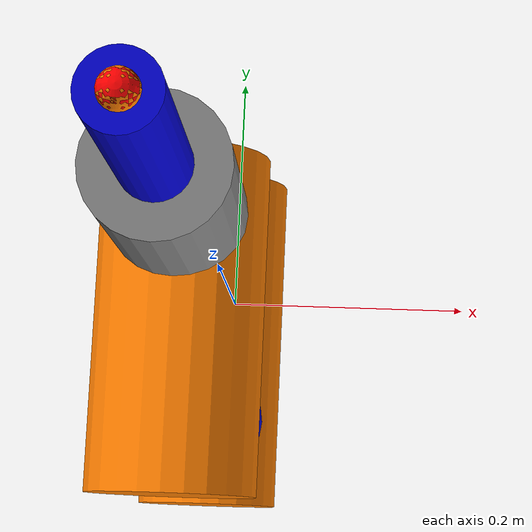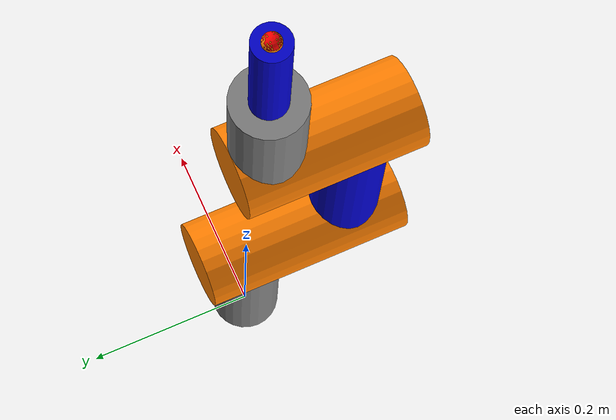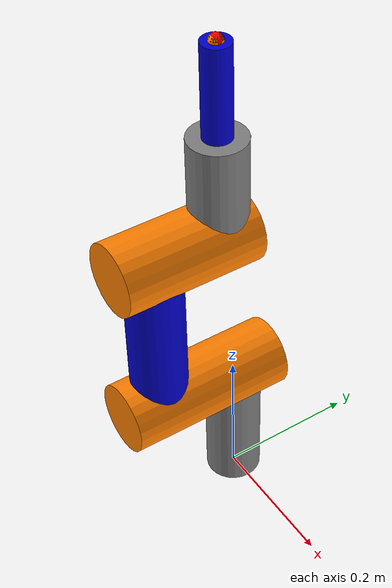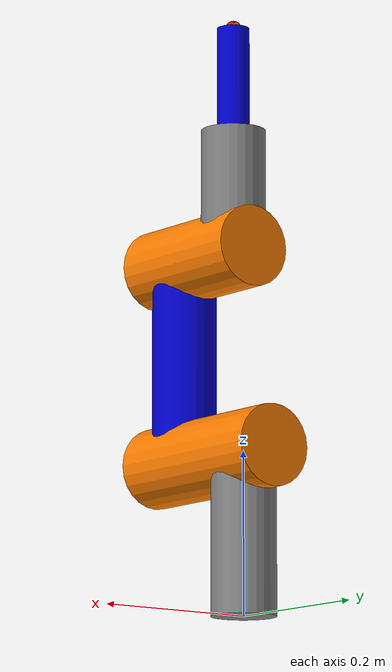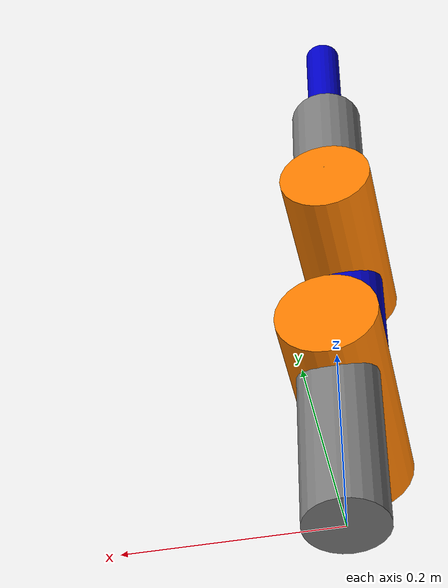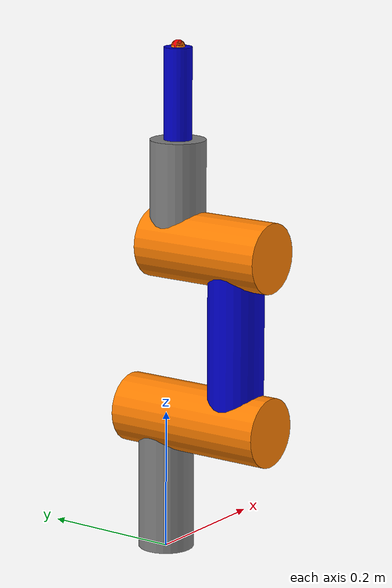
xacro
<?xml version="1.0"?>
<robot xmlns:xacro="http://www.ros.org/wiki/xacro" name="lab4_robot_final_perfect_axis">

  <xacro:property name="h_base"  value="0.20"/>
  <xacro:property name="h_link1" value="0.25"/>
  <xacro:property name="h_link2" value="0.15"/>
  <xacro:property name="h_tip"   value="0.13"/>

  <xacro:property name="j2_len" value="0.24"/>
  <xacro:property name="j3_len" value="0.20"/>

  <xacro:property name="radius_main" value="0.04"/>
  <xacro:property name="radius_joint" value="0.05"/>
  <xacro:property name="radius_tip" value="0.02"/>

  <material name="grey"> <color rgba="0.5 0.5 0.5 1"/> </material>
  <material name="orange"> <color rgba="1.0 0.5 0.0 1"/> </material>
  <material name="blue"> <color rgba="0.0 0.0 0.8 1"/> </material>

  <link name="world"/>

  <joint name="joint_1" type="revolute">
    <parent link="world"/>
    <child link="link_base"/>
    <origin xyz="0 0 0" rpy="0 0 0"/>
    <axis xyz="0 0 1"/>
    <limit lower="-3.14" upper="3.14" effort="100" velocity="1.0"/>
  </joint>

  <link name="link_base">
    <visual>
      <origin xyz="0 0 ${h_base/2}" rpy="0 0 0"/>
      <geometry>
        <cylinder length="${h_base}" radius="${radius_main}"/>
      </geometry>
      <material name="grey"/>
    </visual>

    <visual>
      <origin xyz="0 -0.06 ${h_base}" rpy="${pi/2} 0 0"/>
      <geometry>
        <cylinder length="${j2_len}" radius="${radius_joint}"/>
      </geometry>
      <material name="orange"/>
    </visual>
  </link>

  <joint name="joint_2" type="revolute">
    <parent link="link_base"/>
    <child link="link_arm_1"/>
    <origin xyz="0 -0.12 ${h_base}" rpy="-1.5708 -1.5708 0"/>
    <axis xyz="0 0 1"/> <limit lower="-2.0" upper="2.0" effort="100" velocity="1.0"/>
  </joint>

  <link name="link_arm_1">
    <visual>
      <origin xyz="${h_link1/2} 0 0" rpy="0 1.5708 0"/>
      <geometry>
        <cylinder length="${h_link1}" radius="${radius_main}"/>
      </geometry>
      <material name="blue"/>
    </visual>

    <visual>
      <origin xyz="${h_link1} 0 0.04" rpy="0 0 0"/> <geometry>
        <cylinder length="${j3_len}" radius="${radius_joint}"/>
      </geometry>
      <material name="orange"/>
    </visual>
  </link>

  <joint name="joint_3" type="revolute">
    <parent link="link_arm_1"/>
    <child link="link_arm_2"/>
    <origin xyz="${h_link1} 0  0.1" rpy="0 0 0"/>
    <axis xyz="0 0 1"/> <limit lower="-2.0" upper="2.0" effort="100" velocity="1.0"/>
  </joint>

  <link name="link_arm_2">
    <visual>
      <origin xyz="${h_link2/2} 0 0" rpy="1.5708 0 1.5708"/>
      <geometry>
        <cylinder length="${h_link2}" radius="${radius_main}"/>
      </geometry>
      <material name="grey"/>
    </visual>

    <visual>
      <origin xyz="${h_link2 + h_tip/2} 0 0" rpy="1.5708 0 1.5708"/>
      <geometry>
        <cylinder length="${h_tip}" radius="${radius_tip}"/>
      </geometry>
      <material name="blue"/>
    </visual>
    <visual>
      <origin xyz="${h_link2 + h_tip} 0  0" rpy="0 0 0"/>
      <geometry>
        <sphere radius="0.01"/>
      </geometry>
      <material name="orange"/>
    </visual>
  </link>

  <link name="tip_frame">
    <visual>
        <origin xyz="0 0 0" rpy="0 0 0"/>
        <geometry>
            <sphere radius="0.01"/>
        </geometry>
        <material name="Red_Marker">
            <color rgba="1.0 0.0 0.0 1.0"/>
        </material>
    </visual>
  </link>

  <joint name="tip_fixed" type="fixed">
    <parent link="link_arm_2"/>
    <child link="tip_frame"/>
    <origin xyz="${h_link2 + h_tip} 0 0" rpy="1.5708 0.0 1.5708"/>
  </joint>

</robot>
